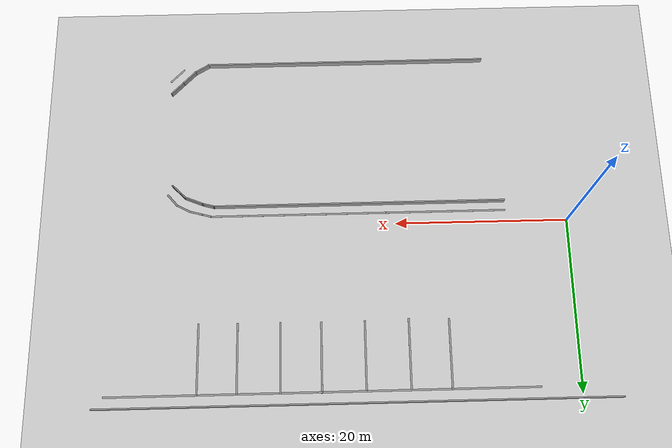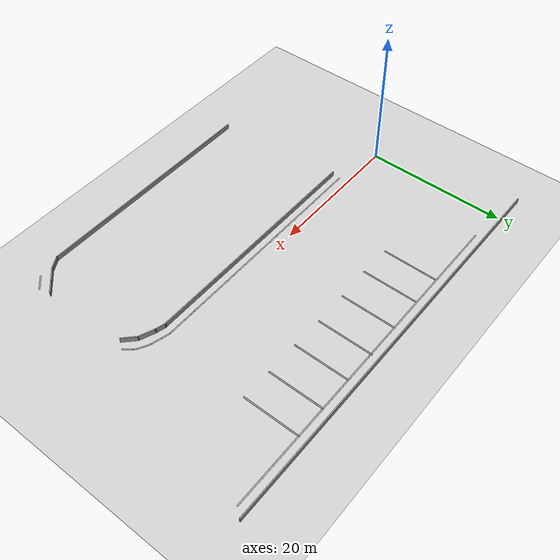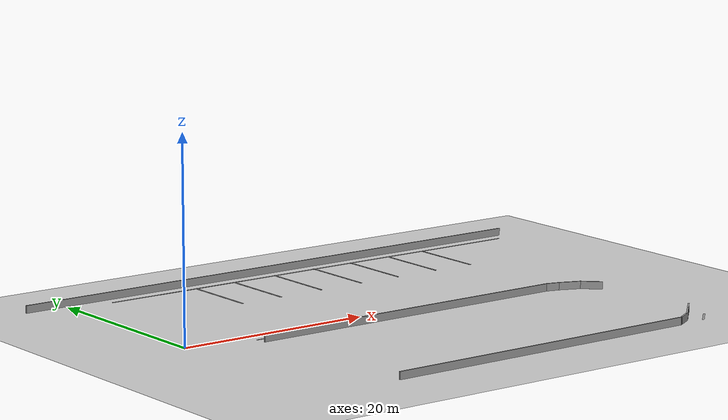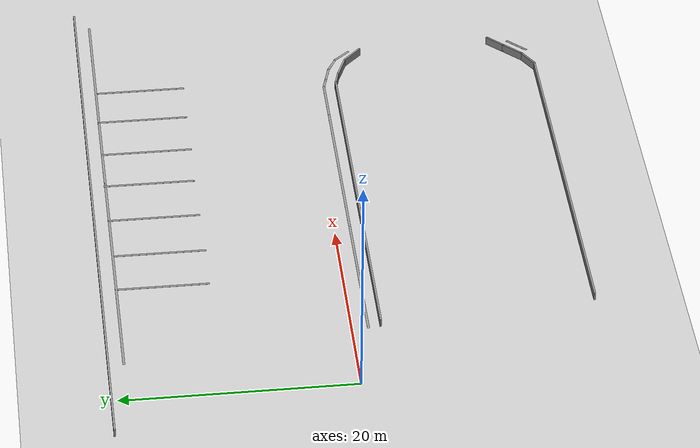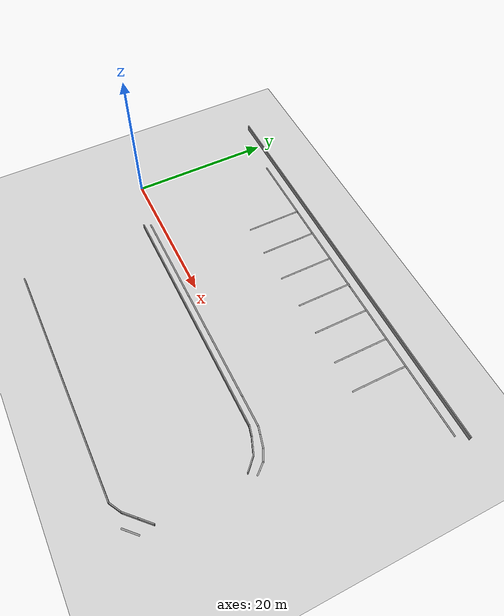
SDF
<sdf version="1.6">
 <world name="default">
  <model name="ground_plane">
   <static>1</static>
   <link name="link">
    <collision name="collision">
     <geometry><plane><normal>0 0 1</normal><size>100 100</size></plane></geometry>
     <surface>
      <contact><collide_bitmask>65535</collide_bitmask></contact>
      <friction><ode><mu>100</mu><mu2>50</mu2></ode></friction>
     </surface>
    </collision>
    <visual name="visual">
     <cast_shadows>0</cast_shadows>
     <geometry><plane><normal>0 0 1</normal><size>100 100</size></plane></geometry>
     <material>
      <script><uri>file://media/materials/scripts/gazebo.material</uri><name>Gazebo/Grey</name></script>
     </material>
    </visual>
   </link>
  </model>
  <model name="GercekDuvarSeritKoyu1">
   <link name="Wall_1034">
    <pose>-69.9829 -17.2566 0 0 -0 0</pose>
    <visual name="Wall_1034_Visual">
     <pose>0 0 0.005 0 -0 0</pose>
     <geometry><box><size>8 0.2 0.01</size></box></geometry>
     <material>
      <script><uri>file://media/materials/scripts/gazebo.material</uri><name>Gazebo/Grey</name></script>
      <ambient>1 1 1 1</ambient>
      <shader type="pixel"/>
     </material>
     <meta><layer>0</layer></meta>
    </visual>
    <collision name="Wall_1034_Collision">
     <pose>0 0 0.005 0 -0 0</pose>
     <geometry><box><size>8 0.2 0.01</size></box></geometry>
     <surface>
      <friction>
       <ode><mu>1</mu><mu2>1</mu2><fdir1>0 0 0</fdir1><slip1>0</slip1><slip2>0</slip2></ode>
       <torsional>
        <coefficient>1</coefficient>
        <patch_radius>0</patch_radius>
        <surface_radius>0</surface_radius>
        <use_patch_radius>1</use_patch_radius>
        <ode><slip>0</slip></ode>
       </torsional>
      </friction>
      <bounce><restitution_coefficient>0</restitution_coefficient><threshold>1e+06</threshold></bounce>
      <contact>
       <collide_without_contact>0</collide_without_contact>
       <collide_without_contact_bitmask>1</collide_without_contact_bitmask>
       <collide_bitmask>1</collide_bitmask>
       <ode>
        <soft_cfm>0</soft_cfm>
        <soft_erp>0.2</soft_erp>
        <kp>1e+13</kp>
        <kd>1</kd>
        <max_vel>0.01</max_vel>
        <min_depth>0</min_depth>
       </ode>
       <bullet>
        <split_impulse>1</split_impulse>
        <split_impulse_penetration_threshold>-0.01</split_impulse_penetration_threshold>
        <soft_cfm>0</soft_cfm>
        <soft_erp>0.2</soft_erp>
        <kp>1e+13</kp>
        <kd>1</kd>
       </bullet>
      </contact>
     </surface>
    </collision>
   </link>
   <link name="Wall_1036">
    <pose>-70.0286 -21.668 0 0 -0 0</pose>
    <visual name="Wall_1036_Visual">
     <pose>0 0 0.005 0 -0 0</pose>
     <geometry><box><size>8 0.2 0.01</size></box></geometry>
     <material>
      <script><uri>file://media/materials/scripts/gazebo.material</uri><name>Gazebo/Grey</name></script>
      <ambient>1 1 1 1</ambient>
      <shader type="pixel"/>
     </material>
     <meta><layer>0</layer></meta>
    </visual>
    <collision name="Wall_1036_Collision">
     <pose>0 0 0.005 0 -0 0</pose>
     <geometry><box><size>8 0.2 0.01</size></box></geometry>
     <surface>
      <friction>
       <ode><mu>1</mu><mu2>1</mu2><fdir1>0 0 0</fdir1><slip1>0</slip1><slip2>0</slip2></ode>
       <torsional>
        <coefficient>1</coefficient>
        <patch_radius>0</patch_radius>
        <surface_radius>0</surface_radius>
        <use_patch_radius>1</use_patch_radius>
        <ode><slip>0</slip></ode>
       </torsional>
      </friction>
      <bounce><restitution_coefficient>0</restitution_coefficient><threshold>1e+06</threshold></bounce>
      <contact>
       <collide_without_contact>0</collide_without_contact>
       <collide_without_contact_bitmask>1</collide_without_contact_bitmask>
       <collide_bitmask>1</collide_bitmask>
       <ode>
        <soft_cfm>0</soft_cfm>
        <soft_erp>0.2</soft_erp>
        <kp>1e+13</kp>
        <kd>1</kd>
        <max_vel>0.01</max_vel>
        <min_depth>0</min_depth>
       </ode>
       <bullet>
        <split_impulse>1</split_impulse>
        <split_impulse_penetration_threshold>-0.01</split_impulse_penetration_threshold>
        <soft_cfm>0</soft_cfm>
        <soft_erp>0.2</soft_erp>
        <kp>1e+13</kp>
        <kd>1</kd>
       </bullet>
      </contact>
     </surface>
    </collision>
   </link>
   <link name="Wall_1038">
    <pose>-70.0286 -26.4891 0 0 -0 0</pose>
    <visual name="Wall_1038_Visual">
     <pose>0 0 0.005 0 -0 0</pose>
     <geometry><box><size>8 0.2 0.01</size></box></geometry>
     <material>
      <script><uri>file://media/materials/scripts/gazebo.material</uri><name>Gazebo/Grey</name></script>
      <ambient>1 1 1 1</ambient>
      <shader type="pixel"/>
     </material>
     <meta><layer>0</layer></meta>
    </visual>
    <collision name="Wall_1038_Collision">
     <pose>0 0 0.005 0 -0 0</pose>
     <geometry><box><size>8 0.2 0.01</size></box></geometry>
     <surface>
      <friction>
       <ode><mu>1</mu><mu2>1</mu2><fdir1>0 0 0</fdir1><slip1>0</slip1><slip2>0</slip2></ode>
       <torsional>
        <coefficient>1</coefficient>
        <patch_radius>0</patch_radius>
        <surface_radius>0</surface_radius>
        <use_patch_radius>1</use_patch_radius>
        <ode><slip>0</slip></ode>
       </torsional>
      </friction>
      <bounce><restitution_coefficient>0</restitution_coefficient><threshold>1e+06</threshold></bounce>
      <contact>
       <collide_without_contact>0</collide_without_contact>
       <collide_without_contact_bitmask>1</collide_without_contact_bitmask>
       <collide_bitmask>1</collide_bitmask>
       <ode>
        <soft_cfm>0</soft_cfm>
        <soft_erp>0.2</soft_erp>
        <kp>1e+13</kp>
        <kd>1</kd>
        <max_vel>0.01</max_vel>
        <min_depth>0</min_depth>
       </ode>
       <bullet>
        <split_impulse>1</split_impulse>
        <split_impulse_penetration_threshold>-0.01</split_impulse_penetration_threshold>
        <soft_cfm>0</soft_cfm>
        <soft_erp>0.2</soft_erp>
        <kp>1e+13</kp>
        <kd>1</kd>
       </bullet>
      </contact>
     </surface>
    </collision>
   </link>
   <link name="Wall_1040">
    <pose>-70.1196 -31.0827 0 0 -0 0</pose>
    <visual name="Wall_1040_Visual">
     <pose>0 0 0.005 0 -0 0</pose>
     <geometry><box><size>8 0.2 0.01</size></box></geometry>
     <material>
      <script><uri>file://media/materials/scripts/gazebo.material</uri><name>Gazebo/Grey</name></script>
      <ambient>1 1 1 1</ambient>
      <shader type="pixel"/>
     </material>
     <meta><layer>0</layer></meta>
    </visual>
    <collision name="Wall_1040_Collision">
     <pose>0 0 0.005 0 -0 0</pose>
     <geometry><box><size>8 0.2 0.01</size></box></geometry>
     <surface>
      <friction>
       <ode><mu>1</mu><mu2>1</mu2><fdir1>0 0 0</fdir1><slip1>0</slip1><slip2>0</slip2></ode>
       <torsional>
        <coefficient>1</coefficient>
        <patch_radius>0</patch_radius>
        <surface_radius>0</surface_radius>
        <use_patch_radius>1</use_patch_radius>
        <ode><slip>0</slip></ode>
       </torsional>
      </friction>
      <bounce><restitution_coefficient>0</restitution_coefficient><threshold>1e+06</threshold></bounce>
      <contact>
       <collide_without_contact>0</collide_without_contact>
       <collide_without_contact_bitmask>1</collide_without_contact_bitmask>
       <collide_bitmask>1</collide_bitmask>
       <ode>
        <soft_cfm>0</soft_cfm>
        <soft_erp>0.2</soft_erp>
        <kp>1e+13</kp>
        <kd>1</kd>
        <max_vel>0.01</max_vel>
        <min_depth>0</min_depth>
       </ode>
       <bullet>
        <split_impulse>1</split_impulse>
        <split_impulse_penetration_threshold>-0.01</split_impulse_penetration_threshold>
        <soft_cfm>0</soft_cfm>
        <soft_erp>0.2</soft_erp>
        <kp>1e+13</kp>
        <kd>1</kd>
       </bullet>
      </contact>
     </surface>
    </collision>
   </link>
   <link name="Wall_1042">
    <pose>-70.0741 -35.9948 0 0 -0 0</pose>
    <visual name="Wall_1042_Visual">
     <pose>0 0 0.005 0 -0 0</pose>
     <geometry><box><size>8 0.2 0.01</size></box></geometry>
     <material>
      <script><uri>file://media/materials/scripts/gazebo.material</uri><name>Gazebo/Grey</name></script>
      <ambient>1 1 1 1</ambient>
      <shader type="pixel"/>
     </material>
     <meta><layer>0</layer></meta>
    </visual>
    <collision name="Wall_1042_Collision">
     <pose>0 0 0.005 0 -0 0</pose>
     <geometry><box><size>8 0.2 0.01</size></box></geometry>
     <surface>
      <friction>
       <ode><mu>1</mu><mu2>1</mu2><fdir1>0 0 0</fdir1><slip1>0</slip1><slip2>0</slip2></ode>
       <torsional>
        <coefficient>1</coefficient>
        <patch_radius>0</patch_radius>
        <surface_radius>0</surface_radius>
        <use_patch_radius>1</use_patch_radius>
        <ode><slip>0</slip></ode>
       </torsional>
      </friction>
      <bounce><restitution_coefficient>0</restitution_coefficient><threshold>1e+06</threshold></bounce>
      <contact>
       <collide_without_contact>0</collide_without_contact>
       <collide_without_contact_bitmask>1</collide_without_contact_bitmask>
       <collide_bitmask>1</collide_bitmask>
       <ode>
        <soft_cfm>0</soft_cfm>
        <soft_erp>0.2</soft_erp>
        <kp>1e+13</kp>
        <kd>1</kd>
        <max_vel>0.01</max_vel>
        <min_depth>0</min_depth>
       </ode>
       <bullet>
        <split_impulse>1</split_impulse>
        <split_impulse_penetration_threshold>-0.01</split_impulse_penetration_threshold>
        <soft_cfm>0</soft_cfm>
        <soft_erp>0.2</soft_erp>
        <kp>1e+13</kp>
        <kd>1</kd>
       </bullet>
      </contact>
     </surface>
    </collision>
   </link>
   <link name="Wall_1044">
    <pose>-69.9386 -40.9523 0 0 -0 0</pose>
    <visual name="Wall_1044_Visual">
     <pose>0 0 0.005 0 -0 0</pose>
     <geometry><box><size>8 0.2 0.01</size></box></geometry>
     <material>
      <script><uri>file://media/materials/scripts/gazebo.material</uri><name>Gazebo/Grey</name></script>
      <ambient>1 1 1 1</ambient>
      <shader type="pixel"/>
     </material>
     <meta><layer>0</layer></meta>
    </visual>
    <collision name="Wall_1044_Collision">
     <pose>0 0 0.005 0 -0 0</pose>
     <geometry><box><size>8 0.2 0.01</size></box></geometry>
     <surface>
      <friction>
       <ode><mu>1</mu><mu2>1</mu2><fdir1>0 0 0</fdir1><slip1>0</slip1><slip2>0</slip2></ode>
       <torsional>
        <coefficient>1</coefficient>
        <patch_radius>0</patch_radius>
        <surface_radius>0</surface_radius>
        <use_patch_radius>1</use_patch_radius>
        <ode><slip>0</slip></ode>
       </torsional>
      </friction>
      <bounce><restitution_coefficient>0</restitution_coefficient><threshold>1e+06</threshold></bounce>
      <contact>
       <collide_without_contact>0</collide_without_contact>
       <collide_without_contact_bitmask>1</collide_without_contact_bitmask>
       <collide_bitmask>1</collide_bitmask>
       <ode>
        <soft_cfm>0</soft_cfm>
        <soft_erp>0.2</soft_erp>
        <kp>1e+13</kp>
        <kd>1</kd>
        <max_vel>0.01</max_vel>
        <min_depth>0</min_depth>
       </ode>
       <bullet>
        <split_impulse>1</split_impulse>
        <split_impulse_penetration_threshold>-0.01</split_impulse_penetration_threshold>
        <soft_cfm>0</soft_cfm>
        <soft_erp>0.2</soft_erp>
        <kp>1e+13</kp>
        <kd>1</kd>
       </bullet>
      </contact>
     </surface>
    </collision>
   </link>
   <link name="Wall_1046">
    <pose>-70.0548 -45.495 0 0 -0 0</pose>
    <visual name="Wall_1046_Visual">
     <pose>0 0 0.005 0 -0 0</pose>
     <geometry><box><size>8 0.2 0.01</size></box></geometry>
     <material>
      <script><uri>file://media/materials/scripts/gazebo.material</uri><name>Gazebo/Grey</name></script>
      <ambient>1 1 1 1</ambient>
      <shader type="pixel"/>
     </material>
     <meta><layer>0</layer></meta>
    </visual>
    <collision name="Wall_1046_Collision">
     <pose>0 0 0.005 0 -0 0</pose>
     <geometry><box><size>8 0.2 0.01</size></box></geometry>
     <surface>
      <friction>
       <ode><mu>1</mu><mu2>1</mu2><fdir1>0 0 0</fdir1><slip1>0</slip1><slip2>0</slip2></ode>
       <torsional>
        <coefficient>1</coefficient>
        <patch_radius>0</patch_radius>
        <surface_radius>0</surface_radius>
        <use_patch_radius>1</use_patch_radius>
        <ode><slip>0</slip></ode>
       </torsional>
      </friction>
      <bounce><restitution_coefficient>0</restitution_coefficient><threshold>1e+06</threshold></bounce>
      <contact>
       <collide_without_contact>0</collide_without_contact>
       <collide_without_contact_bitmask>1</collide_without_contact_bitmask>
       <collide_bitmask>1</collide_bitmask>
       <ode>
        <soft_cfm>0</soft_cfm>
        <soft_erp>0.2</soft_erp>
        <kp>1e+13</kp>
        <kd>1</kd>
        <max_vel>0.01</max_vel>
        <min_depth>0</min_depth>
       </ode>
       <bullet>
        <split_impulse>1</split_impulse>
        <split_impulse_penetration_threshold>-0.01</split_impulse_penetration_threshold>
        <soft_cfm>0</soft_cfm>
        <soft_erp>0.2</soft_erp>
        <kp>1e+13</kp>
        <kd>1</kd>
       </bullet>
      </contact>
     </surface>
    </collision>
   </link>
   <link name="Wall_325">
    <pose>-73.9479 -18.8376 0 0 0 -1.5708</pose>
    <visual name="Wall_325_Visual">
     <pose>0 0 0.005 0 -0 0</pose>
     <geometry><box><size>23.7998 0.2 0.01</size></box></geometry>
     <material>
      <script><uri>file://media/materials/scripts/gazebo.material</uri><name>Gazebo/Grey</name></script>
      <ambient>1 1 1 1</ambient>
      <shader type="pixel"/>
     </material>
     <meta><layer>0</layer></meta>
    </visual>
    <collision name="Wall_325_Collision">
     <pose>0 0 0.005 0 -0 0</pose>
     <geometry><box><size>23.7998 0.2 0.01</size></box></geometry>
     <surface>
      <friction>
       <ode><mu>1</mu><mu2>1</mu2><fdir1>0 0 0</fdir1><slip1>0</slip1><slip2>0</slip2></ode>
       <torsional>
        <coefficient>1</coefficient>
        <patch_radius>0</patch_radius>
        <surface_radius>0</surface_radius>
        <use_patch_radius>1</use_patch_radius>
        <ode><slip>0</slip></ode>
       </torsional>
      </friction>
      <bounce><restitution_coefficient>0</restitution_coefficient><threshold>1e+06</threshold></bounce>
      <contact>
       <collide_without_contact>0</collide_without_contact>
       <collide_without_contact_bitmask>1</collide_without_contact_bitmask>
       <collide_bitmask>1</collide_bitmask>
       <ode>
        <soft_cfm>0</soft_cfm>
        <soft_erp>0.2</soft_erp>
        <kp>1e+13</kp>
        <kd>1</kd>
        <max_vel>0.01</max_vel>
        <min_depth>0</min_depth>
       </ode>
       <bullet>
        <split_impulse>1</split_impulse>
        <split_impulse_penetration_threshold>-0.01</split_impulse_penetration_threshold>
        <soft_cfm>0</soft_cfm>
        <soft_erp>0.2</soft_erp>
        <kp>1e+13</kp>
        <kd>1</kd>
       </bullet>
      </contact>
     </surface>
    </collision>
   </link>
   <link name="Wall_327">
    <pose>-73.9479 -42.9376 0 0 0 -1.5708</pose>
    <visual name="Wall_327_Visual">
     <pose>0 0 0.005 0 -0 0</pose>
     <geometry><box><size>24.7998 0.2 0.01</size></box></geometry>
     <material>
      <script><uri>file://media/materials/scripts/gazebo.material</uri><name>Gazebo/Grey</name></script>
      <ambient>1 1 1 1</ambient>
      <shader type="pixel"/>
     </material>
     <meta><layer>0</layer></meta>
    </visual>
    <collision name="Wall_327_Collision">
     <pose>0 0 0.005 0 -0 0</pose>
     <geometry><box><size>24.7998 0.2 0.01</size></box></geometry>
     <surface>
      <friction>
       <ode><mu>1</mu><mu2>1</mu2><fdir1>0 0 0</fdir1><slip1>0</slip1><slip2>0</slip2></ode>
       <torsional>
        <coefficient>1</coefficient>
        <patch_radius>0</patch_radius>
        <surface_radius>0</surface_radius>
        <use_patch_radius>1</use_patch_radius>
        <ode><slip>0</slip></ode>
       </torsional>
      </friction>
      <bounce><restitution_coefficient>0</restitution_coefficient><threshold>1e+06</threshold></bounce>
      <contact>
       <collide_without_contact>0</collide_without_contact>
       <collide_without_contact_bitmask>1</collide_without_contact_bitmask>
       <collide_bitmask>1</collide_bitmask>
       <ode>
        <soft_cfm>0</soft_cfm>
        <soft_erp>0.2</soft_erp>
        <kp>1e+13</kp>
        <kd>1</kd>
        <max_vel>0.01</max_vel>
        <min_depth>0</min_depth>
       </ode>
       <bullet>
        <split_impulse>1</split_impulse>
        <split_impulse_penetration_threshold>-0.01</split_impulse_penetration_threshold>
        <soft_cfm>0</soft_cfm>
        <soft_erp>0.2</soft_erp>
        <kp>1e+13</kp>
        <kd>1</kd>
       </bullet>
      </contact>
     </surface>
    </collision>
   </link>
   <link name="Wall_352">
    <pose>-35.1004 -13.8501 0 0 -0 2.35619</pose>
    <visual name="Wall_352_Visual">
     <pose>0 0 0.005 0 -0 0</pose>
     <geometry><box><size>2.30006 0.2 0.01</size></box></geometry>
     <material>
      <script><uri>file://media/materials/scripts/gazebo.material</uri><name>Gazebo/Grey</name></script>
      <ambient>1 1 1 1</ambient>
      <shader type="pixel"/>
     </material>
     <meta><layer>0</layer></meta>
    </visual>
    <collision name="Wall_352_Collision">
     <pose>0 0 0.005 0 -0 0</pose>
     <geometry><box><size>2.30006 0.2 0.01</size></box></geometry>
     <surface>
      <friction>
       <ode><mu>1</mu><mu2>1</mu2><fdir1>0 0 0</fdir1><slip1>0</slip1><slip2>0</slip2></ode>
       <torsional>
        <coefficient>1</coefficient>
        <patch_radius>0</patch_radius>
        <surface_radius>0</surface_radius>
        <use_patch_radius>1</use_patch_radius>
        <ode><slip>0</slip></ode>
       </torsional>
      </friction>
      <bounce><restitution_coefficient>0</restitution_coefficient><threshold>1e+06</threshold></bounce>
      <contact>
       <collide_without_contact>0</collide_without_contact>
       <collide_without_contact_bitmask>1</collide_without_contact_bitmask>
       <collide_bitmask>1</collide_bitmask>
       <ode>
        <soft_cfm>0</soft_cfm>
        <soft_erp>0.2</soft_erp>
        <kp>1e+13</kp>
        <kd>1</kd>
        <max_vel>0.01</max_vel>
        <min_depth>0</min_depth>
       </ode>
       <bullet>
        <split_impulse>1</split_impulse>
        <split_impulse_penetration_threshold>-0.01</split_impulse_penetration_threshold>
        <soft_cfm>0</soft_cfm>
        <soft_erp>0.2</soft_erp>
        <kp>1e+13</kp>
        <kd>1</kd>
       </bullet>
      </contact>
     </surface>
    </collision>
   </link>
   <link name="Wall_360">
    <pose>-51.2419 -13.7781 0 0 0 -2.43264</pose>
    <visual name="Wall_360_Visual">
     <pose>0 0 0.005 0 -0 0</pose>
     <geometry><box><size>1.87574 0.2 0.01</size></box></geometry>
     <material>
      <script><uri>file://media/materials/scripts/gazebo.material</uri><name>Gazebo/Grey</name></script>
      <ambient>1 1 1 1</ambient>
      <shader type="pixel"/>
     </material>
     <meta><layer>0</layer></meta>
    </visual>
    <collision name="Wall_360_Collision">
     <pose>0 0 0.005 0 -0 0</pose>
     <geometry><box><size>1.87574 0.2 0.01</size></box></geometry>
     <surface>
      <friction>
       <ode><mu>1</mu><mu2>1</mu2><fdir1>0 0 0</fdir1><slip1>0</slip1><slip2>0</slip2></ode>
       <torsional>
        <coefficient>1</coefficient>
        <patch_radius>0</patch_radius>
        <surface_radius>0</surface_radius>
        <use_patch_radius>1</use_patch_radius>
        <ode><slip>0</slip></ode>
       </torsional>
      </friction>
      <bounce><restitution_coefficient>0</restitution_coefficient><threshold>1e+06</threshold></bounce>
      <contact>
       <collide_without_contact>0</collide_without_contact>
       <collide_without_contact_bitmask>1</collide_without_contact_bitmask>
       <collide_bitmask>1</collide_bitmask>
       <ode>
        <soft_cfm>0</soft_cfm>
        <soft_erp>0.2</soft_erp>
        <kp>1e+13</kp>
        <kd>1</kd>
        <max_vel>0.01</max_vel>
        <min_depth>0</min_depth>
       </ode>
       <bullet>
        <split_impulse>1</split_impulse>
        <split_impulse_penetration_threshold>-0.01</split_impulse_penetration_threshold>
        <soft_cfm>0</soft_cfm>
        <soft_erp>0.2</soft_erp>
        <kp>1e+13</kp>
        <kd>1</kd>
       </bullet>
      </contact>
     </surface>
    </collision>
   </link>
   <link name="Wall_361">
    <pose>-52.2779 -15.0766 0 0 0 -2.0591</pose>
    <visual name="Wall_361_Visual">
     <pose>0 0 0.005 0 -0 0</pose>
     <geometry><box><size>1.9056 0.2 0.01</size></box></geometry>
     <material>
      <script><uri>file://media/materials/scripts/gazebo.material</uri><name>Gazebo/Grey</name></script>
      <ambient>1 1 1 1</ambient>
      <shader type="pixel"/>
     </material>
     <meta><layer>0</layer></meta>
    </visual>
    <collision name="Wall_361_Collision">
     <pose>0 0 0.005 0 -0 0</pose>
     <geometry><box><size>1.9056 0.2 0.01</size></box></geometry>
     <surface>
      <friction>
       <ode><mu>1</mu><mu2>1</mu2><fdir1>0 0 0</fdir1><slip1>0</slip1><slip2>0</slip2></ode>
       <torsional>
        <coefficient>1</coefficient>
        <patch_radius>0</patch_radius>
        <surface_radius>0</surface_radius>
        <use_patch_radius>1</use_patch_radius>
        <ode><slip>0</slip></ode>
       </torsional>
      </friction>
      <bounce><restitution_coefficient>0</restitution_coefficient><threshold>1e+06</threshold></bounce>
      <contact>
       <collide_without_contact>0</collide_without_contact>
       <collide_without_contact_bitmask>1</collide_without_contact_bitmask>
       <collide_bitmask>1</collide_bitmask>
       <ode>
        <soft_cfm>0</soft_cfm>
        <soft_erp>0.2</soft_erp>
        <kp>1e+13</kp>
        <kd>1</kd>
        <max_vel>0.01</max_vel>
        <min_depth>0</min_depth>
       </ode>
       <bullet>
        <split_impulse>1</split_impulse>
        <split_impulse_penetration_threshold>-0.01</split_impulse_penetration_threshold>
        <soft_cfm>0</soft_cfm>
        <soft_erp>0.2</soft_erp>
        <kp>1e+13</kp>
        <kd>1</kd>
       </bullet>
      </contact>
     </surface>
    </collision>
   </link>
   <link name="Wall_362">
    <pose>-52.8849 -16.5926 0 0 0 -1.83572</pose>
    <visual name="Wall_362_Visual">
     <pose>0 0 0.005 0 -0 0</pose>
     <geometry><box><size>1.78096 0.2 0.01</size></box></geometry>
     <material>
      <script><uri>file://media/materials/scripts/gazebo.material</uri><name>Gazebo/Grey</name></script>
      <ambient>1 1 1 1</ambient>
      <shader type="pixel"/>
     </material>
     <meta><layer>0</layer></meta>
    </visual>
    <collision name="Wall_362_Collision">
     <pose>0 0 0.005 0 -0 0</pose>
     <geometry><box><size>1.78096 0.2 0.01</size></box></geometry>
     <surface>
      <friction>
       <ode><mu>1</mu><mu2>1</mu2><fdir1>0 0 0</fdir1><slip1>0</slip1><slip2>0</slip2></ode>
       <torsional>
        <coefficient>1</coefficient>
        <patch_radius>0</patch_radius>
        <surface_radius>0</surface_radius>
        <use_patch_radius>1</use_patch_radius>
        <ode><slip>0</slip></ode>
       </torsional>
      </friction>
      <bounce><restitution_coefficient>0</restitution_coefficient><threshold>1e+06</threshold></bounce>
      <contact>
       <collide_without_contact>0</collide_without_contact>
       <collide_without_contact_bitmask>1</collide_without_contact_bitmask>
       <collide_bitmask>1</collide_bitmask>
       <ode>
        <soft_cfm>0</soft_cfm>
        <soft_erp>0.2</soft_erp>
        <kp>1e+13</kp>
        <kd>1</kd>
        <max_vel>0.01</max_vel>
        <min_depth>0</min_depth>
       </ode>
       <bullet>
        <split_impulse>1</split_impulse>
        <split_impulse_penetration_threshold>-0.01</split_impulse_penetration_threshold>
        <soft_cfm>0</soft_cfm>
        <soft_erp>0.2</soft_erp>
        <kp>1e+13</kp>
        <kd>1</kd>
       </bullet>
      </contact>
     </surface>
    </collision>
   </link>
   <link name="Wall_364">
    <pose>-53.2344 -17.8866 0 0 0 -1.83298</pose>
    <visual name="Wall_364_Visual">
     <pose>0 0 0.005 0 -0 0</pose>
     <geometry><box><size>1.2998 0.2 0.01</size></box></geometry>
     <material>
      <script><uri>file://media/materials/scripts/gazebo.material</uri><name>Gazebo/Grey</name></script>
      <ambient>1 1 1 1</ambient>
      <shader type="pixel"/>
     </material>
     <meta><layer>0</layer></meta>
    </visual>
    <collision name="Wall_364_Collision">
     <pose>0 0 0.005 0 -0 0</pose>
     <geometry><box><size>1.2998 0.2 0.01</size></box></geometry>
     <surface>
      <friction>
       <ode><mu>1</mu><mu2>1</mu2><fdir1>0 0 0</fdir1><slip1>0</slip1><slip2>0</slip2></ode>
       <torsional>
        <coefficient>1</coefficient>
        <patch_radius>0</patch_radius>
        <surface_radius>0</surface_radius>
        <use_patch_radius>1</use_patch_radius>
        <ode><slip>0</slip></ode>
       </torsional>
      </friction>
      <bounce><restitution_coefficient>0</restitution_coefficient><threshold>1e+06</threshold></bounce>
      <contact>
       <collide_without_contact>0</collide_without_contact>
       <collide_without_contact_bitmask>1</collide_without_contact_bitmask>
       <collide_bitmask>1</collide_bitmask>
       <ode>
        <soft_cfm>0</soft_cfm>
        <soft_erp>0.2</soft_erp>
        <kp>1e+13</kp>
        <kd>1</kd>
        <max_vel>0.01</max_vel>
        <min_depth>0</min_depth>
       </ode>
       <bullet>
        <split_impulse>1</split_impulse>
        <split_impulse_penetration_threshold>-0.01</split_impulse_penetration_threshold>
        <soft_cfm>0</soft_cfm>
        <soft_erp>0.2</soft_erp>
        <kp>1e+13</kp>
        <kd>1</kd>
       </bullet>
      </contact>
     </surface>
    </collision>
   </link>
   <link name="Wall_365">
    <pose>-53.3769 -20.5926 0 0 0 -1.5708</pose>
    <visual name="Wall_365_Visual">
     <pose>0 0 0.005 0 -0 0</pose>
     <geometry><box><size>4.55032 0.2 0.01</size></box></geometry>
     <material>
      <script><uri>file://media/materials/scripts/gazebo.material</uri><name>Gazebo/Grey</name></script>
      <ambient>1 1 1 1</ambient>
      <shader type="pixel"/>
     </material>
     <meta><layer>0</layer></meta>
    </visual>
    <collision name="Wall_365_Collision">
     <pose>0 0 0.005 0 -0 0</pose>
     <geometry><box><size>4.55032 0.2 0.01</size></box></geometry>
     <surface>
      <friction>
       <ode><mu>1</mu><mu2>1</mu2><fdir1>0 0 0</fdir1><slip1>0</slip1><slip2>0</slip2></ode>
       <torsional>
        <coefficient>1</coefficient>
        <patch_radius>0</patch_radius>
        <surface_radius>0</surface_radius>
        <use_patch_radius>1</use_patch_radius>
        <ode><slip>0</slip></ode>
       </torsional>
      </friction>
      <bounce><restitution_coefficient>0</restitution_coefficient><threshold>1e+06</threshold></bounce>
      <contact>
       <collide_without_contact>0</collide_without_contact>
       <collide_without_contact_bitmask>1</collide_without_contact_bitmask>
       <collide_bitmask>1</collide_bitmask>
       <ode>
        <soft_cfm>0</soft_cfm>
        <soft_erp>0.2</soft_erp>
        <kp>1e+13</kp>
        <kd>1</kd>
        <max_vel>0.01</max_vel>
        <min_depth>0</min_depth>
       </ode>
       <bullet>
        <split_impulse>1</split_impulse>
        <split_impulse_penetration_threshold>-0.01</split_impulse_penetration_threshold>
        <soft_cfm>0</soft_cfm>
        <soft_erp>0.2</soft_erp>
        <kp>1e+13</kp>
        <kd>1</kd>
       </bullet>
      </contact>
     </surface>
    </collision>
   </link>
   <link name="Wall_367">
    <pose>-53.3769 -30.8176 0 0 0 -1.5708</pose>
    <visual name="Wall_367_Visual">
     <pose>0 0 0.005 0 -0 0</pose>
     <geometry><box><size>16.3003 0.2 0.01</size></box></geometry>
     <material>
      <script><uri>file://media/materials/scripts/gazebo.material</uri><name>Gazebo/Grey</name></script>
      <ambient>1 1 1 1</ambient>
      <shader type="pixel"/>
     </material>
     <meta><layer>0</layer></meta>
    </visual>
    <collision name="Wall_367_Collision">
     <pose>0 0 0.005 0 -0 0</pose>
     <geometry><box><size>16.3003 0.2 0.01</size></box></geometry>
     <surface>
      <friction>
       <ode><mu>1</mu><mu2>1</mu2><fdir1>0 0 0</fdir1><slip1>0</slip1><slip2>0</slip2></ode>
       <torsional>
        <coefficient>1</coefficient>
        <patch_radius>0</patch_radius>
        <surface_radius>0</surface_radius>
        <use_patch_radius>1</use_patch_radius>
        <ode><slip>0</slip></ode>
       </torsional>
      </friction>
      <bounce><restitution_coefficient>0</restitution_coefficient><threshold>1e+06</threshold></bounce>
      <contact>
       <collide_without_contact>0</collide_without_contact>
       <collide_without_contact_bitmask>1</collide_without_contact_bitmask>
       <collide_bitmask>1</collide_bitmask>
       <ode>
        <soft_cfm>0</soft_cfm>
        <soft_erp>0.2</soft_erp>
        <kp>1e+13</kp>
        <kd>1</kd>
        <max_vel>0.01</max_vel>
        <min_depth>0</min_depth>
       </ode>
       <bullet>
        <split_impulse>1</split_impulse>
        <split_impulse_penetration_threshold>-0.01</split_impulse_penetration_threshold>
        <soft_cfm>0</soft_cfm>
        <soft_erp>0.2</soft_erp>
        <kp>1e+13</kp>
        <kd>1</kd>
       </bullet>
      </contact>
     </surface>
    </collision>
   </link>
   <link name="Wall_369">
    <pose>-53.3769 -45.7926 0 0 0 -1.5708</pose>
    <visual name="Wall_369_Visual">
     <pose>0 0 0.005 0 -0 0</pose>
     <geometry><box><size>14.0503 0.2 0.01</size></box></geometry>
     <material>
      <script><uri>file://media/materials/scripts/gazebo.material</uri><name>Gazebo/Grey</name></script>
      <ambient>1 1 1 1</ambient>
      <shader type="pixel"/>
     </material>
     <meta><layer>0</layer></meta>
    </visual>
    <collision name="Wall_369_Collision">
     <pose>0 0 0.005 0 -0 0</pose>
     <geometry><box><size>14.0503 0.2 0.01</size></box></geometry>
     <surface>
      <friction>
       <ode><mu>1</mu><mu2>1</mu2><fdir1>0 0 0</fdir1><slip1>0</slip1><slip2>0</slip2></ode>
       <torsional>
        <coefficient>1</coefficient>
        <patch_radius>0</patch_radius>
        <surface_radius>0</surface_radius>
        <use_patch_radius>1</use_patch_radius>
        <ode><slip>0</slip></ode>
       </torsional>
      </friction>
      <bounce><restitution_coefficient>0</restitution_coefficient><threshold>1e+06</threshold></bounce>
      <contact>
       <collide_without_contact>0</collide_without_contact>
       <collide_without_contact_bitmask>1</collide_without_contact_bitmask>
       <collide_bitmask>1</collide_bitmask>
       <ode>
        <soft_cfm>0</soft_cfm>
        <soft_erp>0.2</soft_erp>
        <kp>1e+13</kp>
        <kd>1</kd>
        <max_vel>0.01</max_vel>
        <min_depth>0</min_depth>
       </ode>
       <bullet>
        <split_impulse>1</split_impulse>
        <split_impulse_penetration_threshold>-0.01</split_impulse_penetration_threshold>
        <soft_cfm>0</soft_cfm>
        <soft_erp>0.2</soft_erp>
        <kp>1e+13</kp>
        <kd>1</kd>
       </bullet>
      </contact>
     </surface>
    </collision>
   </link>
   <link name="Wall_61">
    <pose>-75.2594 -35.0306 0 0 0 -1.57105</pose>
    <inertial>
     <mass>1</mass>
     <inertia><ixx>1</ixx><ixy>0</ixy><ixz>0</ixz><iyy>1</iyy><iyz>0</iyz><izz>1</izz></inertia>
    </inertial>
    <visual name="Wall_61_Visual">
     <pose>0 0 0.375 0 -0 0</pose>
     <geometry><box><size>58.3559 0.15 0.75</size></box></geometry>
     <material>
      <script><uri>file://media/materials/scripts/gazebo.material</uri><name>Gazebo/Grey</name></script>
      <ambient>0.5 0.5 0.5 1</ambient>
      <shader type="pixel"><normal_map>__default__</normal_map></shader>
      <diffuse>0.7 0.7 0.7 1</diffuse>
      <specular>0.01 0.01 0.01 1</specular>
      <emissive>0 0 0 1</emissive>
     </material>
     <meta><layer>0</layer></meta>
    </visual>
    <collision name="Wall_61_Collision">
     <pose>0 0 0.375 0 -0 0</pose>
     <geometry><box><size>58.3559 0.15 0.75</size></box></geometry>
     <surface>
      <friction>
       <ode><mu>1</mu><mu2>1</mu2><fdir1>0 0 0</fdir1><slip1>0</slip1><slip2>0</slip2></ode>
       <torsional>
        <coefficient>1</coefficient>
        <patch_radius>0</patch_radius>
        <surface_radius>0</surface_radius>
        <use_patch_radius>1</use_patch_radius>
        <ode><slip>0</slip></ode>
       </torsional>
      </friction>
      <bounce><restitution_coefficient>0</restitution_coefficient><threshold>1e+06</threshold></bounce>
      <contact>
       <collide_without_contact>0</collide_without_contact>
       <collide_without_contact_bitmask>1</collide_without_contact_bitmask>
       <collide_bitmask>1</collide_bitmask>
       <ode>
        <soft_cfm>0</soft_cfm>
        <soft_erp>0.2</soft_erp>
        <kp>1e+13</kp>
        <kd>1</kd>
        <max_vel>0.01</max_vel>
        <min_depth>0</min_depth>
       </ode>
       <bullet>
        <split_impulse>1</split_impulse>
        <split_impulse_penetration_threshold>-0.01</split_impulse_penetration_threshold>
        <soft_cfm>0</soft_cfm>
        <soft_erp>0.2</soft_erp>
        <kp>1e+13</kp>
        <kd>1</kd>
       </bullet>
      </contact>
     </surface>
    </collision>
   </link>
   <link name="Wall_63">
    <pose>-52.3339 -35.7046 0 0 0 -1.5708</pose>
    <inertial>
     <mass>1</mass>
     <inertia><ixx>1</ixx><ixy>0</ixy><ixz>0</ixz><iyy>1</iyy><iyz>0</iyz><izz>1</izz></inertia>
    </inertial>
    <visual name="Wall_63_Visual">
     <pose>0 0 0.375 0 -0 0</pose>
     <geometry><box><size>34 0.15 0.75</size></box></geometry>
     <material>
      <script><uri>file://media/materials/scripts/gazebo.material</uri><name>Gazebo/Grey</name></script>
      <ambient>0.5 0.5 0.5 1</ambient>
      <shader type="pixel"><normal_map>__default__</normal_map></shader>
      <diffuse>0.7 0.7 0.7 1</diffuse>
      <specular>0.01 0.01 0.01 1</specular>
      <emissive>0 0 0 1</emissive>
     </material>
     <meta><layer>0</layer></meta>
    </visual>
    <collision name="Wall_63_Collision">
     <pose>0 0 0.375 0 -0 0</pose>
     <geometry><box><size>34 0.15 0.75</size></box></geometry>
     <surface>
      <friction>
       <ode><mu>1</mu><mu2>1</mu2><fdir1>0 0 0</fdir1><slip1>0</slip1><slip2>0</slip2></ode>
       <torsional>
        <coefficient>1</coefficient>
        <patch_radius>0</patch_radius>
        <surface_radius>0</surface_radius>
        <use_patch_radius>1</use_patch_radius>
        <ode><slip>0</slip></ode>
       </torsional>
      </friction>
      <bounce><restitution_coefficient>0</restitution_coefficient><threshold>1e+06</threshold></bounce>
      <contact>
       <collide_without_contact>0</collide_without_contact>
       <collide_without_contact_bitmask>1</collide_without_contact_bitmask>
       <collide_bitmask>1</collide_bitmask>
       <ode>
        <soft_cfm>0</soft_cfm>
        <soft_erp>0.2</soft_erp>
        <kp>1e+13</kp>
        <kd>1</kd>
        <max_vel>0.01</max_vel>
        <min_depth>0</min_depth>
       </ode>
       <bullet>
        <split_impulse>1</split_impulse>
        <split_impulse_penetration_threshold>-0.01</split_impulse_penetration_threshold>
        <soft_cfm>0</soft_cfm>
        <soft_erp>0.2</soft_erp>
        <kp>1e+13</kp>
        <kd>1</kd>
       </bullet>
      </contact>
     </surface>
    </collision>
   </link>
   <link name="Wall_65">
    <pose>-52.1589 -18.1276 0 0 -0 1.30857</pose>
    <inertial>
     <mass>1</mass>
     <inertia><ixx>1</ixx><ixy>0</ixy><ixz>0</ixz><iyy>1</iyy><iyz>0</iyz><izz>1</izz></inertia>
    </inertial>
    <visual name="Wall_65_Visual">
     <pose>0 0 0.375 0 -0 0</pose>
     <geometry><box><size>1.5 0.15 0.75</size></box></geometry>
     <material>
      <script><uri>file://media/materials/scripts/gazebo.material</uri><name>Gazebo/Grey</name></script>
      <ambient>0.5 0.5 0.5 1</ambient>
      <shader type="pixel"><normal_map>__default__</normal_map></shader>
      <diffuse>0.7 0.7 0.7 1</diffuse>
      <specular>0.01 0.01 0.01 1</specular>
      <emissive>0 0 0 1</emissive>
     </material>
     <meta><layer>0</layer></meta>
    </visual>
    <collision name="Wall_65_Collision">
     <pose>0 0 0.375 0 -0 0</pose>
     <geometry><box><size>1.5 0.15 0.75</size></box></geometry>
     <surface>
      <friction>
       <ode><mu>1</mu><mu2>1</mu2><fdir1>0 0 0</fdir1><slip1>0</slip1><slip2>0</slip2></ode>
       <torsional>
        <coefficient>1</coefficient>
        <patch_radius>0</patch_radius>
        <surface_radius>0</surface_radius>
        <use_patch_radius>1</use_patch_radius>
        <ode><slip>0</slip></ode>
       </torsional>
      </friction>
      <bounce><restitution_coefficient>0</restitution_coefficient><threshold>1e+06</threshold></bounce>
      <contact>
       <collide_without_contact>0</collide_without_contact>
       <collide_without_contact_bitmask>1</collide_without_contact_bitmask>
       <collide_bitmask>1</collide_bitmask>
       <ode>
        <soft_cfm>0</soft_cfm>
        <soft_erp>0.2</soft_erp>
        <kp>1e+13</kp>
        <kd>1</kd>
        <max_vel>0.01</max_vel>
        <min_depth>0</min_depth>
       </ode>
       <bullet>
        <split_impulse>1</split_impulse>
        <split_impulse_penetration_threshold>-0.01</split_impulse_penetration_threshold>
        <soft_cfm>0</soft_cfm>
        <soft_erp>0.2</soft_erp>
        <kp>1e+13</kp>
        <kd>1</kd>
       </bullet>
      </contact>
     </surface>
    </collision>
   </link>
   <link name="Wall_66">
    <pose>-51.5654 -16.4336 0 0 -0 1.18888</pose>
    <inertial>
     <mass>1</mass>
     <inertia><ixx>1</ixx><ixy>0</ixy><ixz>0</ixz><iyy>1</iyy><iyz>0</iyz><izz>1</izz></inertia>
    </inertial>
    <visual name="Wall_66_Visual">
     <pose>0 0 0.375 0 -0 0</pose>
     <geometry><box><size>2.39607 0.15 0.75</size></box></geometry>
     <material>
      <script><uri>file://media/materials/scripts/gazebo.material</uri><name>Gazebo/Grey</name></script>
      <ambient>0.5 0.5 0.5 1</ambient>
      <shader type="pixel"><normal_map>__default__</normal_map></shader>
      <diffuse>0.7 0.7 0.7 1</diffuse>
      <specular>0.01 0.01 0.01 1</specular>
      <emissive>0 0 0 1</emissive>
     </material>
     <meta><layer>0</layer></meta>
    </visual>
    <collision name="Wall_66_Collision">
     <pose>0 0 0.375 0 -0 0</pose>
     <geometry><box><size>2.39607 0.15 0.75</size></box></geometry>
     <surface>
      <friction>
       <ode><mu>1</mu><mu2>1</mu2><fdir1>0 0 0</fdir1><slip1>0</slip1><slip2>0</slip2></ode>
       <torsional>
        <coefficient>1</coefficient>
        <patch_radius>0</patch_radius>
        <surface_radius>0</surface_radius>
        <use_patch_radius>1</use_patch_radius>
        <ode><slip>0</slip></ode>
       </torsional>
      </friction>
      <bounce><restitution_coefficient>0</restitution_coefficient><threshold>1e+06</threshold></bounce>
      <contact>
       <collide_without_contact>0</collide_without_contact>
       <collide_without_contact_bitmask>1</collide_without_contact_bitmask>
       <collide_bitmask>1</collide_bitmask>
       <ode>
        <soft_cfm>0</soft_cfm>
        <soft_erp>0.2</soft_erp>
        <kp>1e+13</kp>
        <kd>1</kd>
        <max_vel>0.01</max_vel>
        <min_depth>0</min_depth>
       </ode>
       <bullet>
        <split_impulse>1</split_impulse>
        <split_impulse_penetration_threshold>-0.01</split_impulse_penetration_threshold>
        <soft_cfm>0</soft_cfm>
        <soft_erp>0.2</soft_erp>
        <kp>1e+13</kp>
        <kd>1</kd>
       </bullet>
      </contact>
     </surface>
    </collision>
   </link>
   <link name="Wall_67">
    <pose>-50.4044 -14.6356 0 0 -0 0.794407</pose>
    <inertial>
     <mass>1</mass>
     <inertia><ixx>1</ixx><ixy>0</ixy><ixz>0</ixz><iyy>1</iyy><iyz>0</iyz><izz>1</izz></inertia>
    </inertial>
    <visual name="Wall_67_Visual">
     <pose>0 0 0.375 0 -0 0</pose>
     <geometry><box><size>2.26893 0.15 0.75</size></box></geometry>
     <material>
      <script><uri>file://media/materials/scripts/gazebo.material</uri><name>Gazebo/Grey</name></script>
      <ambient>0.5 0.5 0.5 1</ambient>
      <shader type="pixel"><normal_map>__default__</normal_map></shader>
      <diffuse>0.7 0.7 0.7 1</diffuse>
      <specular>0.01 0.01 0.01 1</specular>
      <emissive>0 0 0 1</emissive>
     </material>
     <meta><layer>0</layer></meta>
    </visual>
    <collision name="Wall_67_Collision">
     <pose>0 0 0.375 0 -0 0</pose>
     <geometry><box><size>2.26893 0.15 0.75</size></box></geometry>
     <surface>
      <friction>
       <ode><mu>1</mu><mu2>1</mu2><fdir1>0 0 0</fdir1><slip1>0</slip1><slip2>0</slip2></ode>
       <torsional>
        <coefficient>1</coefficient>
        <patch_radius>0</patch_radius>
        <surface_radius>0</surface_radius>
        <use_patch_radius>1</use_patch_radius>
        <ode><slip>0</slip></ode>
       </torsional>
      </friction>
      <bounce><restitution_coefficient>0</restitution_coefficient><threshold>1e+06</threshold></bounce>
      <contact>
       <collide_without_contact>0</collide_without_contact>
       <collide_without_contact_bitmask>1</collide_without_contact_bitmask>
       <collide_bitmask>1</collide_bitmask>
       <ode>
        <soft_cfm>0</soft_cfm>
        <soft_erp>0.2</soft_erp>
        <kp>1e+13</kp>
        <kd>1</kd>
        <max_vel>0.01</max_vel>
        <min_depth>0</min_depth>
       </ode>
       <bullet>
        <split_impulse>1</split_impulse>
        <split_impulse_penetration_threshold>-0.01</split_impulse_penetration_threshold>
        <soft_cfm>0</soft_cfm>
        <soft_erp>0.2</soft_erp>
        <kp>1e+13</kp>
        <kd>1</kd>
       </bullet>
      </contact>
     </surface>
    </collision>
   </link>
   <link name="Wall_71">
    <pose>-37.1059 -14.0006 0 0 0 -0.785398</pose>
    <inertial>
     <mass>1</mass>
     <inertia><ixx>1</ixx><ixy>0</ixy><ixz>0</ixz><iyy>1</iyy><iyz>0</iyz><izz>1</izz></inertia>
    </inertial>
    <visual name="Wall_71_Visual">
     <pose>0 0 0.375 0 -0 0</pose>
     <geometry><box><size>2 0.15 0.75</size></box></geometry>
     <material>
      <script><uri>file://media/materials/scripts/gazebo.material</uri><name>Gazebo/Grey</name></script>
      <ambient>0.5 0.5 0.5 1</ambient>
      <shader type="pixel"><normal_map>__default__</normal_map></shader>
      <diffuse>0.7 0.7 0.7 1</diffuse>
      <specular>0.01 0.01 0.01 1</specular>
      <emissive>0 0 0 1</emissive>
     </material>
     <meta><layer>0</layer></meta>
    </visual>
    <collision name="Wall_71_Collision">
     <pose>0 0 0.375 0 -0 0</pose>
     <geometry><box><size>2 0.15 0.75</size></box></geometry>
     <surface>
      <friction>
       <ode><mu>1</mu><mu2>1</mu2><fdir1>0 0 0</fdir1><slip1>0</slip1><slip2>0</slip2></ode>
       <torsional>
        <coefficient>1</coefficient>
        <patch_radius>0</patch_radius>
        <surface_radius>0</surface_radius>
        <use_patch_radius>1</use_patch_radius>
        <ode><slip>0</slip></ode>
       </torsional>
      </friction>
      <bounce><restitution_coefficient>0</restitution_coefficient><threshold>1e+06</threshold></bounce>
      <contact>
       <collide_without_contact>0</collide_without_contact>
       <collide_without_contact_bitmask>1</collide_without_contact_bitmask>
       <collide_bitmask>1</collide_bitmask>
       <ode>
        <soft_cfm>0</soft_cfm>
        <soft_erp>0.2</soft_erp>
        <kp>1e+13</kp>
        <kd>1</kd>
        <max_vel>0.01</max_vel>
        <min_depth>0</min_depth>
       </ode>
       <bullet>
        <split_impulse>1</split_impulse>
        <split_impulse_penetration_threshold>-0.01</split_impulse_penetration_threshold>
        <soft_cfm>0</soft_cfm>
        <soft_erp>0.2</soft_erp>
        <kp>1e+13</kp>
        <kd>1</kd>
       </bullet>
      </contact>
     </surface>
    </collision>
   </link>
   <link name="Wall_72">
    <pose>-35.7094 -15.3971 0 0 0 -0.785398</pose>
    <inertial>
     <mass>1</mass>
     <inertia><ixx>1</ixx><ixy>0</ixy><ixz>0</ixz><iyy>1</iyy><iyz>0</iyz><izz>1</izz></inertia>
    </inertial>
    <visual name="Wall_72_Visual">
     <pose>0 0 0.375 0 -0 0</pose>
     <geometry><box><size>2.25 0.15 0.75</size></box></geometry>
     <material>
      <script><uri>file://media/materials/scripts/gazebo.material</uri><name>Gazebo/Grey</name></script>
      <ambient>0.5 0.5 0.5 1</ambient>
      <shader type="pixel"><normal_map>__default__</normal_map></shader>
      <diffuse>0.7 0.7 0.7 1</diffuse>
      <specular>0.01 0.01 0.01 1</specular>
      <emissive>0 0 0 1</emissive>
     </material>
     <meta><layer>0</layer></meta>
    </visual>
    <collision name="Wall_72_Collision">
     <pose>0 0 0.375 0 -0 0</pose>
     <geometry><box><size>2.25 0.15 0.75</size></box></geometry>
     <surface>
      <friction>
       <ode><mu>1</mu><mu2>1</mu2><fdir1>0 0 0</fdir1><slip1>0</slip1><slip2>0</slip2></ode>
       <torsional>
        <coefficient>1</coefficient>
        <patch_radius>0</patch_radius>
        <surface_radius>0</surface_radius>
        <use_patch_radius>1</use_patch_radius>
        <ode><slip>0</slip></ode>
       </torsional>
      </friction>
      <bounce><restitution_coefficient>0</restitution_coefficient><threshold>1e+06</threshold></bounce>
      <contact>
       <collide_without_contact>0</collide_without_contact>
       <collide_without_contact_bitmask>1</collide_without_contact_bitmask>
       <collide_bitmask>1</collide_bitmask>
       <ode>
        <soft_cfm>0</soft_cfm>
        <soft_erp>0.2</soft_erp>
        <kp>1e+13</kp>
        <kd>1</kd>
        <max_vel>0.01</max_vel>
        <min_depth>0</min_depth>
       </ode>
       <bullet>
        <split_impulse>1</split_impulse>
        <split_impulse_penetration_threshold>-0.01</split_impulse_penetration_threshold>
        <soft_cfm>0</soft_cfm>
        <soft_erp>0.2</soft_erp>
        <kp>1e+13</kp>
        <kd>1</kd>
       </bullet>
      </contact>
     </surface>
    </collision>
   </link>
   <link name="Wall_73">
    <pose>-34.5044 -16.9406 0 0 0 -1.04716</pose>
    <inertial>
     <mass>1</mass>
     <inertia><ixx>1</ixx><ixy>0</ixy><ixz>0</ixz><iyy>1</iyy><iyz>0</iyz><izz>1</izz></inertia>
    </inertial>
    <visual name="Wall_73_Visual">
     <pose>0 0 0.375 0 -0 0</pose>
     <geometry><box><size>2 0.15 0.75</size></box></geometry>
     <material>
      <script><uri>file://media/materials/scripts/gazebo.material</uri><name>Gazebo/Grey</name></script>
      <ambient>0.5 0.5 0.5 1</ambient>
      <shader type="pixel"><normal_map>__default__</normal_map></shader>
      <diffuse>0.7 0.7 0.7 1</diffuse>
      <specular>0.01 0.01 0.01 1</specular>
      <emissive>0 0 0 1</emissive>
     </material>
     <meta><layer>0</layer></meta>
    </visual>
    <collision name="Wall_73_Collision">
     <pose>0 0 0.375 0 -0 0</pose>
     <geometry><box><size>2 0.15 0.75</size></box></geometry>
     <surface>
      <friction>
       <ode><mu>1</mu><mu2>1</mu2><fdir1>0 0 0</fdir1><slip1>0</slip1><slip2>0</slip2></ode>
       <torsional>
        <coefficient>1</coefficient>
        <patch_radius>0</patch_radius>
        <surface_radius>0</surface_radius>
        <use_patch_radius>1</use_patch_radius>
        <ode><slip>0</slip></ode>
       </torsional>
      </friction>
      <bounce><restitution_coefficient>0</restitution_coefficient><threshold>1e+06</threshold></bounce>
      <contact>
       <collide_without_contact>0</collide_without_contact>
       <collide_without_contact_bitmask>1</collide_without_contact_bitmask>
       <collide_bitmask>1</collide_bitmask>
       <ode>
        <soft_cfm>0</soft_cfm>
        <soft_erp>0.2</soft_erp>
        <kp>1e+13</kp>
        <kd>1</kd>
        <max_vel>0.01</max_vel>
        <min_depth>0</min_depth>
       </ode>
       <bullet>
        <split_impulse>1</split_impulse>
        <split_impulse_penetration_threshold>-0.01</split_impulse_penetration_threshold>
        <soft_cfm>0</soft_cfm>
        <soft_erp>0.2</soft_erp>
        <kp>1e+13</kp>
        <kd>1</kd>
       </bullet>
      </contact>
     </surface>
    </collision>
   </link>
   <link name="Wall_75">
    <pose>-34.0419 -34.4166 0 0 0 -1.5708</pose>
    <inertial>
     <mass>1</mass>
     <inertia><ixx>1</ixx><ixy>0</ixy><ixz>0</ixz><iyy>1</iyy><iyz>0</iyz><izz>1</izz></inertia>
    </inertial>
    <visual name="Wall_75_Visual">
     <pose>0 0 0.375 0 -0 0</pose>
     <geometry><box><size>33.5 0.15 0.75</size></box></geometry>
     <material>
      <script><uri>file://media/materials/scripts/gazebo.material</uri><name>Gazebo/Grey</name></script>
      <ambient>0.5 0.5 0.5 1</ambient>
      <shader type="pixel"><normal_map>__default__</normal_map></shader>
      <diffuse>0.7 0.7 0.7 1</diffuse>
      <specular>0.01 0.01 0.01 1</specular>
      <emissive>0 0 0 1</emissive>
     </material>
     <meta><layer>0</layer></meta>
    </visual>
    <collision name="Wall_75_Collision">
     <pose>0 0 0.375 0 -0 0</pose>
     <geometry><box><size>33.5 0.15 0.75</size></box></geometry>
     <surface>
      <friction>
       <ode><mu>1</mu><mu2>1</mu2><fdir1>0 0 0</fdir1><slip1>0</slip1><slip2>0</slip2></ode>
       <torsional>
        <coefficient>1</coefficient>
        <patch_radius>0</patch_radius>
        <surface_radius>0</surface_radius>
        <use_patch_radius>1</use_patch_radius>
        <ode><slip>0</slip></ode>
       </torsional>
      </friction>
      <bounce><restitution_coefficient>0</restitution_coefficient><threshold>1e+06</threshold></bounce>
      <contact>
       <collide_without_contact>0</collide_without_contact>
       <collide_without_contact_bitmask>1</collide_without_contact_bitmask>
       <collide_bitmask>1</collide_bitmask>
       <ode>
        <soft_cfm>0</soft_cfm>
        <soft_erp>0.2</soft_erp>
        <kp>1e+13</kp>
        <kd>1</kd>
        <max_vel>0.01</max_vel>
        <min_depth>0</min_depth>
       </ode>
       <bullet>
        <split_impulse>1</split_impulse>
        <split_impulse_penetration_threshold>-0.01</split_impulse_penetration_threshold>
        <soft_cfm>0</soft_cfm>
        <soft_erp>0.2</soft_erp>
        <kp>1e+13</kp>
        <kd>1</kd>
       </bullet>
      </contact>
     </surface>
    </collision>
   </link>
   <static>1</static>
   <pose>59.9324 -54.7034 -0 0 0 -1.5695</pose>
  </model>
 </world>
</sdf>
